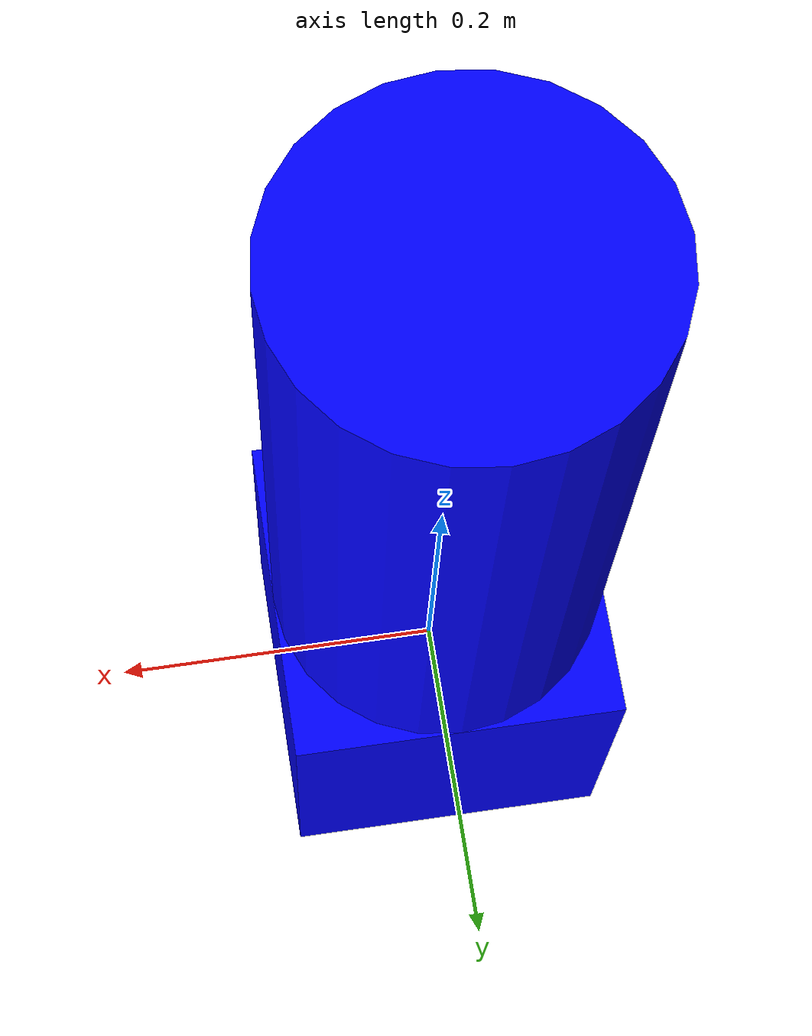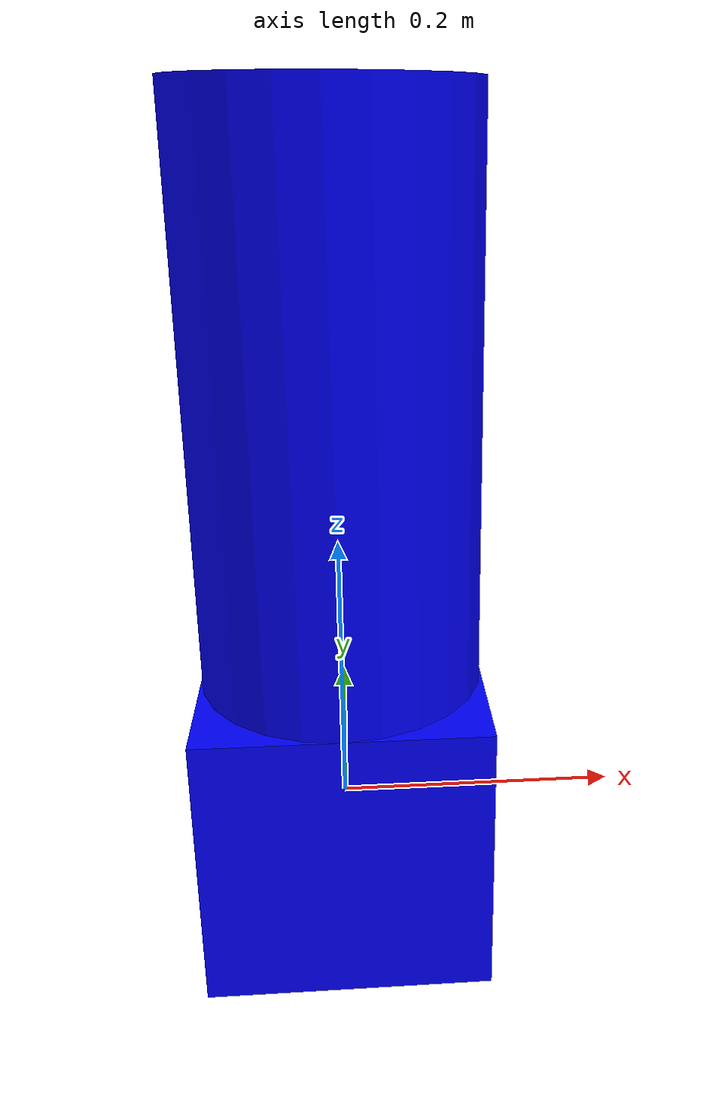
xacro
<?xml version="1.0" ?>
<robot name="simple_es165" xmlns:xacro="http://ros.org/wiki/xacro">
  <xacro:arg name="joint_velocities_file" default="$(find simple_es165_test)/config/joint_velocities.yaml"/>

  <xacro:include filename="$(find simple_es165_test)/urdf/simple_es165_macro.xacro"/>

  <!-- ros2 control setup -->
  <xacro:include filename="$(find simple_es165_test)/urdf/simple_es165_ros2_control.xacro" />
  <xacro:simple_es165_ros2_control name="simple_es165_arm"/>

  <xacro:simple_es165 prefix="" joint_velocities_file="$(arg joint_velocities_file)"/>
</robot>

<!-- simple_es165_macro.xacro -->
<robot xmlns:xacro="http://ros.org/wiki/xacro">
  <xacro:macro name="simple_es165" params="prefix joint_velocities_file">
    <!-- Simplified single joint robot -->
    <!-- link list -->
    <link name="${prefix}base_link">
      <visual>
        <origin xyz="0 0 0" rpy="0 0 0"/>
        <geometry>
          <box size="0.2 0.2 0.2"/>
        </geometry>
        <material name="blue">
          <color rgba="0 0 1 1"/>
        </material>
      </visual>
      <collision>
        <geometry>
          <box size="0.2 0.2 0.2"/>
        </geometry>
      </collision>
    </link>

    <link name="${prefix}link_1">
      <visual>
        <origin xyz="0 0 0" rpy="0 0 0"/>
        <geometry>
          <cylinder radius="0.1" length="0.5"/>
        </geometry>
        <material name="blue"/>
      </visual>
      <collision>
        <origin xyz="0 0 0" rpy="0 0 0"/>
        <geometry>
          <cylinder radius="0.1" length="0.5"/>
        </geometry>
      </collision>
    </link>

    <!-- end of link list -->

    <!-- joint list -->
    <xacro:property name="velocities" value="${xacro.load_yaml(joint_velocities_file)}" />

    <joint name="${prefix}joint_1" type="revolute">
      <origin xyz="0 0 0.25" rpy="0 0 0"/>
      <parent link="${prefix}base_link"/>
      <child link="${prefix}link_1"/>
      <axis xyz="0 0 1"/>
      <limit lower="${radians(-180)}" upper="${radians(180)}" effort="0" velocity="${radians(velocities['joint_1'])}"/>
    </joint>
    <!-- end of joint list -->

    <!-- Tool frame -->
    <link name="${prefix}tool0"/>
    <joint name="${prefix}link_1-tool0" type="fixed">
      <origin xyz="0 0 0.25" rpy="0 0 0"/>
      <parent link="${prefix}link_1"/>
      <child link="${prefix}tool0"/>
    </joint>

  </xacro:macro>
</robot>
